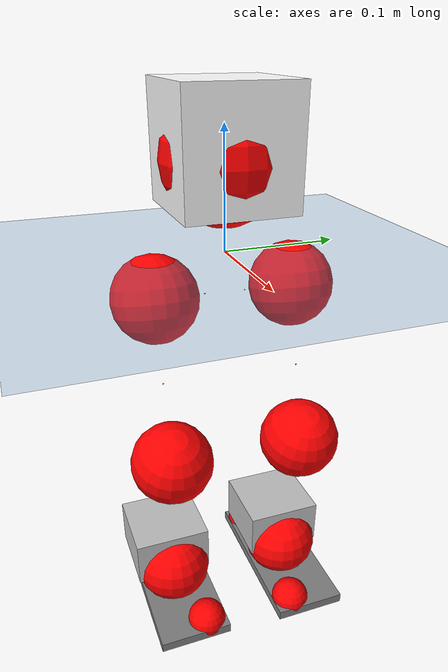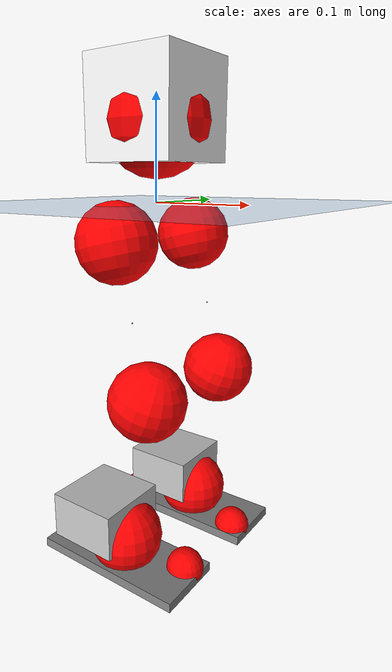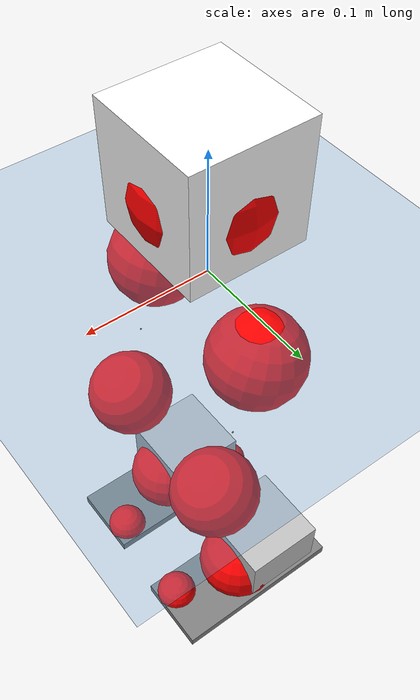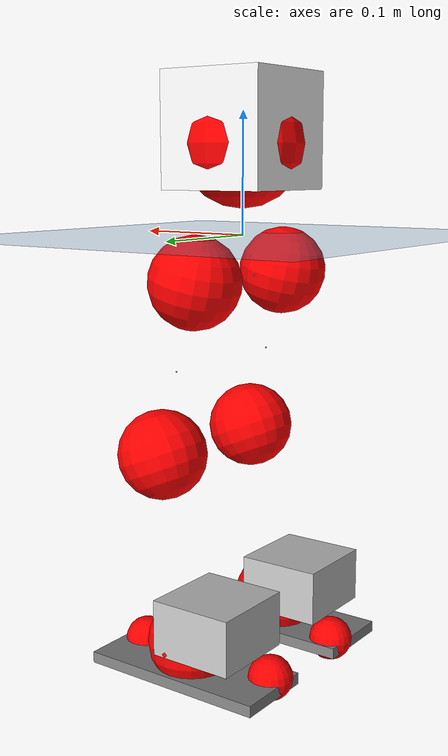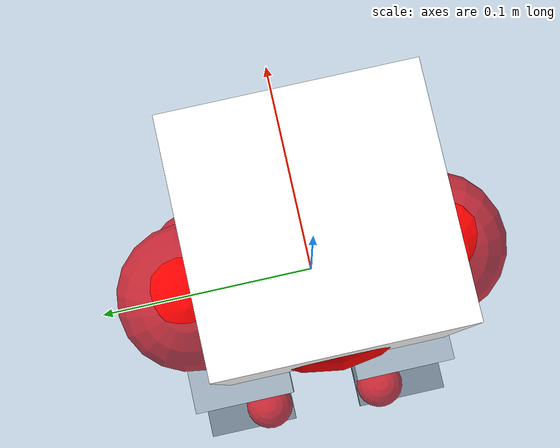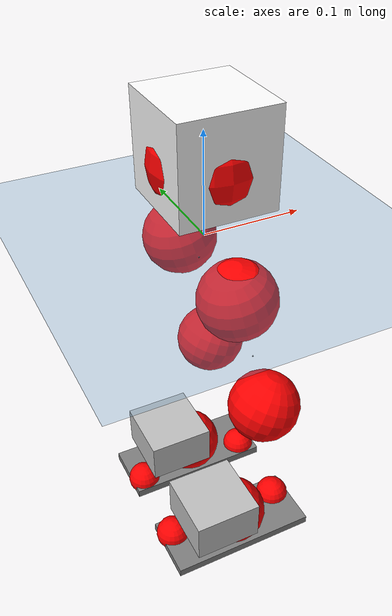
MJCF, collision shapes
<mujoco model="pi_12dof_release_v1">
  <compiler angle="radian" assetdir="assets" balanceinertia="true" inertiafromgeom="false"/>

  <option timestep="0.005" density="1.2" viscosity="2e-05"/>

  <size nkey="1"/>

  <visual>
    <quality shadowsize="8192"/>
    <map shadowclip="0.5"/>
  </visual>

  <default>
    <default class="/">
      <joint armature="0.01" damping="0.01" frictionloss="0.01"/>
      <geom contype="0" conaffinity="0" group="1" solref="-1000 -80"/>
      <site size="0.01 0.005 0.005" group="5"/>
      <general forcelimited="true" biastype="affine" gainprm="20" biasprm="0 -20 -0.5"/>
      <default class="foot">
        <geom size="0.0845 0.036 0.005" type="box" condim="6" group="4" priority="1" friction="0.9 0.2 0.2" solimp="0.015 1 0.005"/>
      </default>
      <default class="reward_collision_sphere">
        <geom group="5" rgba="1 0 0 1"/>
      </default>
    </default>
  </default>

  <asset>
    <texture type="skybox" colorspace="auto" name="//unnamed_texture_0" builtin="gradient" rgb1="0.95 0.95 0.95" rgb2="0.95 0.95 0.95" width="100" height="600"/>
    <texture type="2d" colorspace="auto" name="texplane" builtin="checker" rgb1="0.345 0.575 0.748" rgb2="0.345 0.575 0.748" markrgb="1 1 1" width="512" height="512"/>
    <material name="MatPlane" class="/" texture="texplane" texuniform="true" texrepeat="2 2" specular="0.9"/>
    <mesh name="baselink_1" class="/" file="baselink_1.STL"/>
    <mesh name="r_hip_pitch_link" class="/" file="r_hip_pitch_link.STL"/>
    <mesh name="r_hip_roll_link" class="/" file="r_hip_roll_link.STL"/>
    <mesh name="r_thigh_link" class="/" file="r_thigh_link.STL"/>
    <mesh name="r_calf_link" class="/" file="r_calf_link.STL"/>
    <mesh name="r_ankle_pitch_link" class="/" file="r_ankle_pitch_link.STL"/>
    <mesh name="r_ankle_roll_link" class="/" file="r_ankle_roll_link.STL"/>
    <mesh name="l_hip_pitch_link" class="/" file="l_hip_pitch_link.STL"/>
    <mesh name="l_hip_roll_link" class="/" file="l_hip_roll_link.STL"/>
    <mesh name="l_thigh_link" class="/" file="l_thigh_link.STL"/>
    <mesh name="l_calf_link" class="/" file="l_calf_link.STL"/>
    <mesh name="l_ankle_pitch_link" class="/" file="l_ankle_pitch_link.STL"/>
    <mesh name="l_ankle_roll_link" class="/" file="l_ankle_roll_link.STL"/>
  </asset>

  <worldbody>
    <geom name="floor" class="/" size="100 100 0.125" type="plane" group="0" material="MatPlane"/>
    <light name="toplight_shadow" class="/" pos="0 0 5" dir="0.0990148 0.0990148 -0.990148" type="directional" ambient="0.04 0.04 0.04" diffuse="0.55 0.55 0.55" specular="0.12 0.12 0.12"/>
    <light name="toplight_fill" class="/" pos="0 0 5" dir="0.0990148 0.0990148 -0.990148" type="directional" castshadow="false" ambient="0.04 0.04 0.04" diffuse="0.3 0.3 0.3" specular="0.08 0.08 0.08"/>
    <body name="trunk" pos="0.00137048 -0.000991216 -0.000261767" quat="1 -0.000103936 -1.83823e-05 4.81373e-05">
      <inertial pos="0.00213442 -5.87577e-05 0.0424282" quat="0.696416 0.0116916 0.0124893 0.717435" mass="1.78207" diaginertia="0.00880295 0.00294296 0.00538941"/>
      <joint name="//unnamed_joint_0" type="free"/>
      <geom name="//unnamed_geom_1" class="/" type="mesh" density="0" rgba="1 1 1 1" mesh="baselink_1"/>
      <geom name="//unnamed_geom_2" class="/" size="0.0470678 0.0470678 0.0470678" pos="0 0 0.0841661" type="box" rgba="1 1 1 1"/>
      <geom name="//unnamed_geom_3" class="reward_collision_sphere" size="0.0517746" pos="0 0 0.0736453"/>
      <site name="imu" class="/" pos="-0.00241565 -0.00259459 -0.00956379" size="0.00941357"/>
      <camera name="track" class="/" pos="0 -1.59684 0" quat="0.707107 0.707107 0 0" mode="trackcom"/>
      <camera name="ego_camera" class="/" pos="0.0730182 0 0.189374" quat="-0.5 -0.5 0.5 0.5"/>
      <body name="r_hip_pitch_link" pos="0.000666235 -0.017768 -0.0339118" quat="0.992128 -0.000369387 -0.125227 -0.000247549">
        <inertial pos="-0.0005975 -0.0439764 0.000111149" quat="-0.0200598 0.705996 -0.0284825 0.707359" mass="0.309612" diaginertia="9.51563e-05 3.18404e-05 0.000106656"/>
        <joint name="r_hip_pitch_joint" class="/" pos="0 0 0" axis="-0.0088969 -0.999945 0.00548698" range="-1.71362 1.24592" armature="0.00945095" damping="0.0216933" frictionloss="0.0094464"/>
        <geom name="//unnamed_geom_4" class="/" type="mesh" density="0" rgba="0.75294 0.75294 0.75294 1" mesh="r_hip_pitch_link"/>
        <geom name="//unnamed_geom_5" class="/" size="0.000470678 0.000470678 0.000470678" type="box" rgba="0.75294 0.75294 0.75294 1"/>
        <body name="r_hip_roll_link" pos="0.000267038 -0.0440893 0.000725235" quat="1 4.95134e-05 0.00040639 -0.000109281">
          <inertial pos="-0.00135735 -0.000243457 -0.0668424" quat="0.702605 -0.0796744 -0.0816233 0.702379" mass="0.327381" diaginertia="0.000294283 9.11365e-05 0.000168009"/>
          <joint name="r_hip_roll_joint" class="/" pos="0 0 0" axis="-0.999991 -0.000175493 0.00415533" range="-0.110227 0.520116" armature="0.00902992" damping="0.00956035" frictionloss="0.00932212"/>
          <geom name="//unnamed_geom_6" class="/" type="mesh" density="0" rgba="0.75294 0.75294 0.75294 1" mesh="r_hip_roll_link"/>
          <geom name="//unnamed_geom_7" class="/" size="0.000470678 0.000470678 0.000470678" type="box" rgba="0.75294 0.75294 0.75294 1"/>
          <geom name="//unnamed_geom_8" class="reward_collision_sphere" size="0.0376543"/>
          <body name="r_thigh_link" pos="-0.000117579 -0.00135412 -0.0730525" quat="1 -0.000103553 2.96653e-05 7.4712e-05">
            <inertial pos="-0.00055699 0.00160786 -0.0499244" quat="0.736405 0.676488 -0.00255063 -0.00804737" mass="0.0928541" diaginertia="0.000108041 3.06037e-05 7.32659e-05"/>
            <joint name="r_thigh_joint" class="/" pos="0 0 0" axis="-8.5374e-05 2.26039e-05 -1" range="-0.298541 0.630335" armature="0.00949775" damping="0.005084" frictionloss="0.00987556"/>
            <geom name="//unnamed_geom_9" class="/" type="mesh" density="0" rgba="0.75294 0.75294 0.75294 1" mesh="r_thigh_link"/>
            <geom name="//unnamed_geom_10" class="/" size="0.000470678 0.000470678 0.000470678" type="box" rgba="0.75294 0.75294 0.75294 1"/>
            <body name="r_calf_link" pos="-0.00207043 0.000302901 -0.0747782" quat="0.947598 -8.81812e-05 0.319466 7.27219e-05">
              <inertial pos="0.00149293 -0.00155854 -0.0752413" quat="0.999969 -0.00389363 -0.000289016 0.00680396" mass="0.698566" diaginertia="0.00314663 0.00116431 0.000230224"/>
              <joint name="r_calf_joint" class="/" pos="0 0 0" axis="0.00298704 -0.999953 0.00917916" range="-1.65976 0.649463" armature="0.00902835" damping="0.0090003" frictionloss="0.00922781"/>
              <geom name="//unnamed_geom_11" class="/" type="mesh" density="0" rgba="0.75294 0.75294 0.75294 1" mesh="r_calf_link"/>
              <geom name="//unnamed_geom_12" class="/" size="0.000470678 0.000470678 0.000470678" type="box" rgba="0.75294 0.75294 0.75294 1"/>
              <geom name="//unnamed_geom_13" class="reward_collision_sphere" size="0.0376543"/>
              <body name="r_ankle_pitch_link" pos="0.000819832 0.00145519 -0.147597" quat="0.980068 -9.0944e-06 -0.198661 -3.76371e-05">
                <inertial pos="0.00554343 0.00518293 -0.000476984" quat="0.00188207 0.707532 -0.00260846 0.706674" mass="0.145366" diaginertia="0.000267101 7.15917e-05 0.000153025"/>
                <joint name="r_ankle_pitch_joint" class="/" pos="0 0 0" axis="-0.000233218 -1 -2.71073e-05" range="-1.31908 0.503153" armature="0.00897726" damping="0.00438955" frictionloss="0.00935249"/>
                <geom name="//unnamed_geom_14" class="/" type="mesh" density="0" rgba="0.75294 0.75294 0.75294 1" mesh="r_ankle_pitch_link"/>
                <geom name="//unnamed_geom_15" class="/" size="0.0367129 0.0376543 0.0235339" type="box" rgba="0.75294 0.75294 0.75294 1"/>
                <body name="r_ankle_roll_link" pos="0.073626 0.00200466 0.00135324" quat="0.999999 -0.000703075 -0.000330447 0.000723885">
                  <inertial pos="-0.0210766 0.000486978 -0.0144446" quat="0.559581 0.430434 0.435432 0.558565" mass="0.424952" diaginertia="0.000973445 0.000337363 0.000372207"/>
                  <joint name="r_ankle_roll_joint" class="/" pos="0 0 0" axis="-0.999957 0.000495982 0.00924892" range="-0.146708 0.141461" armature="0.00924455" damping="0.0156738" frictionloss="0.00920884"/>
                  <geom name="//unnamed_geom_16" class="/" type="mesh" density="0" rgba="0.75294 0.75294 0.75294 1" mesh="r_ankle_roll_link"/>
                  <geom name="//unnamed_geom_17" class="/" type="mesh" rgba="0.75294 0.75294 0.75294 1" mesh="r_ankle_roll_link"/>
                  <geom name="right_foot" class="foot" size="0.0816032 0.0352019 0.00471203" pos="-0.0496524 0 -0.0462913"/>
                  <geom name="//unnamed_geom_19" class="reward_collision_sphere" size="0.0376543" pos="-0.0486788 0 -0.0210415"/>
                  <geom name="//unnamed_geom_20" class="reward_collision_sphere" size="0.0188271" pos="0.0146036 0.0159684 -0.042083"/>
                  <geom name="//unnamed_geom_21" class="reward_collision_sphere" size="0.0188271" pos="-0.116829 0.0159684 -0.042083"/>
                  <site name="right_foot" class="foot" pos="-0.0496524 0 -0.0462913" size="0.00941357"/>
                </body>
              </body>
            </body>
          </body>
        </body>
      </body>
      <body name="l_hip_pitch_link" pos="0.00201856 0.0181505 -0.0345566" quat="0.992206 -3.76156e-05 -0.124611 6.9349e-05">
        <inertial pos="0.00259971 0.040714 -0.000276905" quat="-0.0351917 0.705139 0.0247593 0.707763" mass="0.328001" diaginertia="0.000112553 3.39429e-05 0.0001277"/>
        <joint name="l_hip_pitch_joint" class="/" pos="0 0 0" axis="0.00969723 0.999949 -0.00279329" range="-1.27926 1.76161" armature="0.00851233" damping="0.0115277" frictionloss="0.00897458"/>
        <geom name="//unnamed_geom_22" class="/" type="mesh" density="0" rgba="0.75294 0.75294 0.75294 1" mesh="l_hip_pitch_link"/>
        <geom name="//unnamed_geom_23" class="/" size="0.000470678 0.000470678 0.000470678" type="box" rgba="0.75294 0.75294 0.75294 1"/>
        <body name="l_hip_roll_link" pos="1.50843e-05 0.0439447 0.000520054" quat="1 0.0002675 -0.000400594 0.000296248">
          <inertial pos="-0.00222188 0.00191709 -0.0644229" quat="0.69955 -0.0776182 -0.0771556 0.706154" mass="0.324888" diaginertia="0.000292477 9.04063e-05 0.000161567"/>
          <joint name="l_hip_roll_joint" class="/" pos="0 0 0" axis="-0.999983 -0.00277633 0.005214" range="-0.511019 0.0966094" armature="0.00984215" damping="0.00366838" frictionloss="0.00971378"/>
          <geom name="//unnamed_geom_24" class="/" type="mesh" density="0" rgba="0.75294 0.75294 0.75294 1" mesh="l_hip_roll_link"/>
          <geom name="//unnamed_geom_25" class="/" size="0.000470678 0.000470678 0.000470678" type="box" rgba="0.75294 0.75294 0.75294 1"/>
          <geom name="//unnamed_geom_26" class="reward_collision_sphere" size="0.0376543"/>
          <body name="l_thigh_link" pos="0.000265261 0.000704204 -0.0751124" quat="0.999999 -0.000469967 -0.000349982 -0.000821031">
            <inertial pos="0.000798144 -0.00165137 -0.0478905" quat="0.674954 0.73785 0.00284128 -0.00248202" mass="0.0923739" diaginertia="0.000109946 3.11489e-05 7.44755e-05"/>
            <joint name="l_thigh_joint" class="/" pos="0 0 0" axis="-0.00326366 0.00208165 -0.999993" range="-0.637316 0.286251" armature="0.00949262" damping="0" frictionloss="0.0096351"/>
            <geom name="//unnamed_geom_27" class="/" type="mesh" density="0" rgba="0.75294 0.75294 0.75294 1" mesh="l_thigh_link"/>
            <geom name="//unnamed_geom_28" class="/" size="0.000470678 0.000470678 0.000470678" type="box" rgba="0.75294 0.75294 0.75294 1"/>
            <body name="l_calf_link" pos="-0.00232565 -0.000274664 -0.0733254" quat="0.947727 -0.000327382 0.319081 -0.000247253">
              <inertial pos="0.000334234 0.00147328 -0.0736407" quat="0.999898 0.00987034 -0.00459517 0.00926031" mass="0.677327" diaginertia="0.00304541 0.00112841 0.000223127"/>
              <joint name="l_calf_joint" class="/" pos="0 0 0" axis="-0.00846795 0.999963 0.00114735" stiffness="0.00132813" range="-0.649309 1.63326" armature="0.00955405" damping="0.00973723" frictionloss="0.00896471"/>
              <geom name="//unnamed_geom_29" class="/" type="mesh" density="0" rgba="0.75294 0.75294 0.75294 1" mesh="l_calf_link"/>
              <geom name="//unnamed_geom_30" class="/" size="0.000470678 0.000470678 0.000470678" type="box" rgba="0.75294 0.75294 0.75294 1"/>
              <geom name="//unnamed_geom_31" class="reward_collision_sphere" size="0.0376543"/>
              <body name="l_ankle_pitch_link" pos="0.000561236 0.000464633 -0.146009" quat="0.980087 8.95003e-05 -0.198569 -0.000404278">
                <inertial pos="0.00396307 -0.00108918 -0.000436501" quat="-0.00373462 0.699497 0.00116862 0.714625" mass="0.146954" diaginertia="0.000269156 7.26453e-05 0.000158387"/>
                <joint name="l_ankle_pitch_joint" class="/" pos="0 0 0" axis="-0.00109339 0.999986 -0.00521358" range="-0.510655 1.29848" armature="0.00969112" damping="0" frictionloss="0.00950292"/>
                <geom name="//unnamed_geom_32" class="/" type="mesh" density="0" rgba="0.75294 0.75294 0.75294 1" mesh="l_ankle_pitch_link"/>
                <geom name="//unnamed_geom_33" class="/" size="0.0367129 0.0376543 0.0235339" type="box" rgba="0.75294 0.75294 0.75294 1"/>
                <body name="l_ankle_roll_link" pos="0.0741138 0.000403083 -1.26529e-05" quat="1 -4.59322e-05 -0.000136611 -6.72439e-05">
                  <inertial pos="-0.0255547 -0.00253964 -0.0135018" quat="0.559773 0.431013 0.433765 0.559222" mass="0.435477" diaginertia="0.000985624 0.000337365 0.000362847"/>
                  <joint name="l_ankle_roll_joint" class="/" pos="0 0 0" axis="-0.999996 0.00267024 -0.000501006" stiffness="0.00139693" range="-0.15457 0.160094" armature="0.00965617" damping="0.0156929" frictionloss="0.0100127"/>
                  <geom name="//unnamed_geom_34" class="/" type="mesh" density="0" rgba="0.75294 0.75294 0.75294 1" mesh="l_ankle_roll_link"/>
                  <geom name="//unnamed_geom_35" class="/" type="mesh" rgba="0.75294 0.75294 0.75294 1" mesh="l_ankle_roll_link"/>
                  <geom name="left_foot" class="foot" size="0.0823314 0.0348042 0.0048191" pos="-0.0496524 0 -0.0462913"/>
                  <geom name="//unnamed_geom_37" class="reward_collision_sphere" size="0.0376543" pos="-0.0486788 0 -0.0210415"/>
                  <geom name="//unnamed_geom_38" class="reward_collision_sphere" size="0.0188271" pos="0.0146036 -0.0159684 -0.042083"/>
                  <geom name="//unnamed_geom_39" class="reward_collision_sphere" size="0.0188271" pos="-0.116829 -0.0159684 -0.042083"/>
                  <site name="left_foot" class="foot" pos="-0.0496524 0 -0.0462913" size="0.00941357"/>
                </body>
              </body>
            </body>
          </body>
        </body>
      </body>
    </body>
  </worldbody>

  <contact>
    <pair class="/" geom1="floor" geom2="right_foot" name="//unnamed_contact_1"/>
    <pair class="/" geom1="floor" geom2="left_foot" name="//unnamed_contact_0"/>
  </contact>

  <actuator>
    <general name="r_hip_pitch_joint" class="/" joint="r_hip_pitch_joint" forcerange="-19.0329 19.0329" gainprm="19.1211" biasprm="0 -19.1211 -0.463762"/>
    <general name="r_hip_roll_joint" class="/" joint="r_hip_roll_joint" forcerange="-20.9346 20.9346" gainprm="19.1211" biasprm="0 -19.1211 -0.463762"/>
    <general name="r_thigh_joint" class="/" joint="r_thigh_joint" forcerange="-20.5191 20.5191" gainprm="19.1211" biasprm="0 -19.1211 -0.463762"/>
    <general name="r_calf_joint" class="/" joint="r_calf_joint" forcerange="-21.2034 21.2034" gainprm="19.1211" biasprm="0 -19.1211 -0.463762"/>
    <general name="r_ankle_pitch_joint" class="/" joint="r_ankle_pitch_joint" forcerange="-20.0709 20.0709" gainprm="19.1211" biasprm="0 -19.1211 -0.463762"/>
    <general name="r_ankle_roll_joint" class="/" joint="r_ankle_roll_joint" forcerange="-19.287 19.287" gainprm="19.1211" biasprm="0 -19.1211 -0.463762"/>
    <general name="l_hip_pitch_joint" class="/" joint="l_hip_pitch_joint" forcerange="-19.7907 19.7907" gainprm="19.1211" biasprm="0 -19.1211 -0.463762"/>
    <general name="l_hip_roll_joint" class="/" joint="l_hip_roll_joint" forcerange="-19.0783 19.0783" gainprm="19.1211" biasprm="0 -19.1211 -0.463762"/>
    <general name="l_thigh_joint" class="/" joint="l_thigh_joint" forcerange="-19.0068 19.0068" gainprm="19.1211" biasprm="0 -19.1211 -0.463762"/>
    <general name="l_calf_joint" class="/" joint="l_calf_joint" forcerange="-19.8245 19.8245" gainprm="19.1211" biasprm="0 -19.1211 -0.463762"/>
    <general name="l_ankle_pitch_joint" class="/" joint="l_ankle_pitch_joint" forcerange="-20.1495 20.1495" gainprm="19.1211" biasprm="0 -19.1211 -0.463762"/>
    <general name="l_ankle_roll_joint" class="/" joint="l_ankle_roll_joint" forcerange="-19.3348 19.3348" gainprm="19.1211" biasprm="0 -19.1211 -0.463762"/>
  </actuator>

  <sensor>
    <gyro site="imu" name="imu_angular_velocity"/>
    <velocimeter site="imu" name="imu_linear_velocity"/>
    <framelinvel objtype="site" objname="left_foot" name="left_foot_global_linear_velocity"/>
    <framelinvel objtype="site" objname="right_foot" name="right_foot_global_linear_velocity"/>
  </sensor>

  <keyframe>
    <key name="home" qpos="0 0 0.291 1 0 0 0 0.4 0 0 -0.8 0.4 0 -0.4 0 0 0.8 -0.4 0"/>
  </keyframe>
</mujoco>
